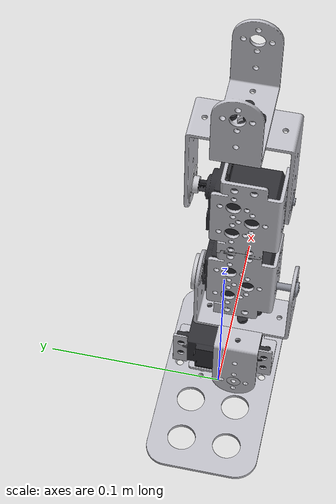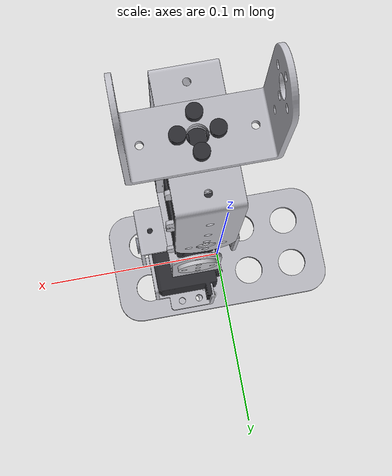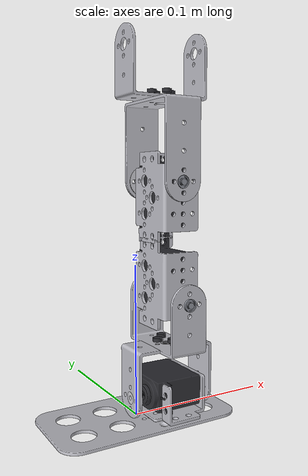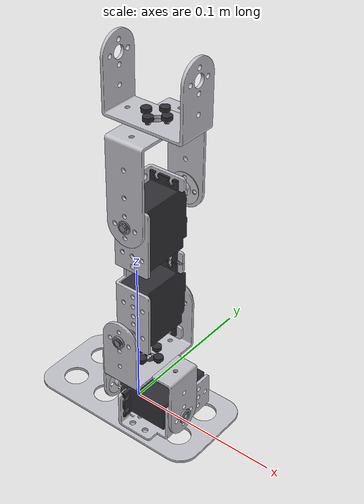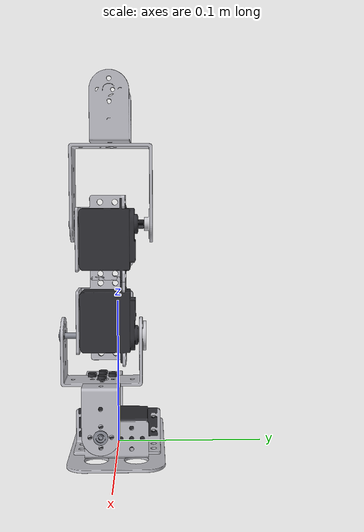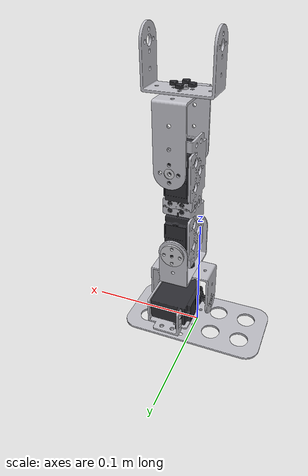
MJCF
<?xml version='1.0' encoding='utf-8'?>
<mujoco model="leg_assembly_right">
  <compiler angle="radian" meshdir=".." autolimits="true"/>
  <visual>
    <global offwidth="1024" offheight="1024"/>
    <headlight ambient="0.55 0.55 0.55" diffuse="0.6 0.6 0.6" specular="0.2 0.2 0.2"/>
  </visual>
  <default>
    <default class="visual"><geom type="mesh" contype="0" conaffinity="0" group="2" density="0"/></default>
    <default class="collision"><geom type="mesh" group="3"/></default>
  </default>
  <asset>
    <mesh name="foot" file="大脚板/脚板支架.STL" scale="0.001 -0.001 0.001"/>
    <mesh name="multi" file="多功能/多功能支架.STL" scale="0.001 -0.001 0.001"/>
    <mesh name="shortU" file="短U/短U支架.STL" scale="0.001 -0.001 0.001"/>
    <mesh name="longU" file="长U/长U支架.STL" scale="0.001 -0.001 0.001"/>
    <mesh name="servo" file="舵机/舵机.STL" scale="0.001 -0.001 0.001"/>
    <mesh name="horn" file="金属舵盘/金属舵盘.STL" scale="0.001 -0.001 0.001"/>
    <mesh name="bearing" file="法兰轴承/法兰轴承.STL" scale="0.001 -0.001 0.001"/>
    <material name="bracket" rgba="0.75 0.75 0.78 1"/>
    <material name="dark" rgba="0.18 0.18 0.20 1"/>
    <material name="horn" rgba="0.80 0.80 0.82 1"/>
    <material name="steel" rgba="0.55 0.56 0.60 1"/>
  </asset>
  <worldbody>
    <body name="foot" pos="0 0 0">
      <geom name="foot_visual" mesh="foot" class="visual" material="bracket" pos="-0.06175 0.03175 -0.001"/>
      <geom name="foot_collision" mesh="foot" class="collision" pos="-0.06175 0.03175 -0.001" density="2700"/>

      <body name="multi" pos="0.022 0 0.0135" quat="0.70710678 0 0 -0.70710678">
        <geom name="multi_visual" mesh="multi" class="visual" material="bracket" pos="-0.029 0.0185 -0.0125"/>
        <geom name="multi_collision" mesh="multi" class="collision" pos="-0.029 0.0185 -0.0125" density="2700"/>
      </body>

      <body name="ankle_servo" pos="0.017000 0.000000 0.016750" quat="0 0.7071068 0 -0.7071068">
        <geom name="servo_visual" mesh="servo" class="visual" material="dark" pos="-0.009752 0.027 -0.0215"/>
        <geom name="servo_collision" mesh="servo" class="collision" pos="-0.009752 0.027 -0.0215" density="1600"/>
      </body>

      <body name="horn" pos="-0.007000 -0.010000 0.016750" quat="0.5 -0.5 0.5 0.5">
        <geom name="horn_visual" mesh="horn" class="visual" material="horn" pos="-0.010 0.0026 -0.010"/>
      </body>

      <body name="little_u" pos="0.017500 -0.010000 0.046750" quat="0.7071068 0 0 -0.7071068">
        <!-- Upper 短U: opening up. -->
        <body name="shortU_up" pos="0 0 0.02225" quat="0.7071068 -0.7071068 0 0">
          <geom name="shortU_up_visual" mesh="shortU" class="visual" material="bracket" pos="-0.027 0.02225 -0.0125"/>
          <geom name="shortU_up_collision" mesh="shortU" class="collision" pos="-0.027 0.02225 -0.0125" density="2700"/>
        </body>

        <!-- Lower 短U: opening down, perpendicular to the upper one. -->
        <body name="shortU_down" pos="0 0 -0.02025" quat="0.5 0.5 -0.5 -0.5">
          <geom name="shortU_down_visual" mesh="shortU" class="visual" material="bracket" pos="-0.027 0.02225 -0.0125"/>
          <geom name="shortU_down_collision" mesh="shortU" class="collision" pos="-0.027 0.02225 -0.0125" density="2700"/>
        </body>

        <!-- M3 screws/nuts through the overlapping base holes (visual only). -->
        <geom name="screw_1" type="cylinder" size="0.0016 0.004" pos="0.007 0 0" quat="0.7071068 -0.7071068 0 0" material="dark" contype="0" conaffinity="0" group="2"/>
        <geom name="screw_2" type="cylinder" size="0.0016 0.004" pos="-0.007 0 0" quat="0.7071068 -0.7071068 0 0" material="dark" contype="0" conaffinity="0" group="2"/>
        <geom name="screw_3" type="cylinder" size="0.0016 0.004" pos="0 -0.007 0" quat="0.7071068 -0.7071068 0 0" material="dark" contype="0" conaffinity="0" group="2"/>
        <geom name="screw_4" type="cylinder" size="0.0016 0.004" pos="0 0.007 0" quat="0.7071068 -0.7071068 0 0" material="dark" contype="0" conaffinity="0" group="2"/>
        <geom name="nut_1" type="cylinder" size="0.003 0.0012" pos="0.007 0 0.0052" material="dark" contype="0" conaffinity="0" group="2"/>
        <geom name="nut_2" type="cylinder" size="0.003 0.0012" pos="-0.007 0 0.0052" material="dark" contype="0" conaffinity="0" group="2"/>
        <geom name="nut_3" type="cylinder" size="0.003 0.0012" pos="0 -0.007 0.0052" material="dark" contype="0" conaffinity="0" group="2"/>
        <geom name="nut_4" type="cylinder" size="0.003 0.0012" pos="0 0.007 0.0052" material="dark" contype="0" conaffinity="0" group="2"/>
      </body>
    </body>
      <body name="multi_0" pos="0.018250 -0.008000 0.143990" quat="0.000000 -0.707107 0.000000 -0.707107">
      <geom name="multi_0_v" mesh="multi" class="visual" material="bracket" pos="-0.029 0.0185 -0.0125"/>
      <geom name="multi_0_c" mesh="multi" class="collision" pos="-0.029 0.0185 -0.0125" density="2700"/>
    </body>
    <body name="servo_1" pos="0.017500 -0.003000 0.143990" quat="0.000000 0.000000 -0.707107 -0.707107">
      <geom name="servo_1_v" mesh="servo" class="visual" material="dark" pos="-0.009752 0.027 -0.0215"/>
      <geom name="servo_1_c" mesh="servo" class="collision" pos="-0.009752 0.027 -0.0215" density="2700"/>
    </body>
    <body name="horn_2" pos="0.017500 0.021000 0.153990" quat="0.000000 0.000000 1.000000 0.000000">
      <geom name="horn_2_v" mesh="horn" class="visual" material="horn" pos="-0.01 0.0026 -0.01"/>
      <geom name="horn_2_c" mesh="horn" class="collision" pos="-0.01 0.0026 -0.01" density="2700"/>
    </body>
    <body name="little_u_top" pos="0.017500 -0.003000 0.206210" quat="0.7071068 0 0 -0.7071068">
      <body name="longU_top" pos="0 0 -0.03225" quat="-0.7071068 -0.7071068 0 0">
        <geom name="longU_top_visual" mesh="longU" class="visual" material="bracket" pos="-0.027 0.03225 -0.0125"/>
        <geom name="longU_top_collision" mesh="longU" class="collision" pos="-0.027 0.03225 -0.0125" density="2700"/>
      </body>
      <body name="shortU_top" pos="0 0 0.02225" quat="0.5 -0.5 -0.5 0.5">
        <geom name="shortU_top_visual" mesh="shortU" class="visual" material="bracket" pos="-0.027 0.02225 -0.0125"/>
        <geom name="shortU_top_collision" mesh="shortU" class="collision" pos="-0.027 0.02225 -0.0125" density="2700"/>
      </body>
      <geom name="top_screw_1" type="cylinder" size="0.0016 0.004" pos="0.007 0 0" quat="0.7071068 -0.7071068 0 0" material="dark" contype="0" conaffinity="0" group="2"/>
      <geom name="top_screw_2" type="cylinder" size="0.0016 0.004" pos="-0.007 0 0" quat="0.7071068 -0.7071068 0 0" material="dark" contype="0" conaffinity="0" group="2"/>
      <geom name="top_screw_3" type="cylinder" size="0.0016 0.004" pos="0 -0.007 0" quat="0.7071068 -0.7071068 0 0" material="dark" contype="0" conaffinity="0" group="2"/>
      <geom name="top_screw_4" type="cylinder" size="0.0016 0.004" pos="0 0.007 0" quat="0.7071068 -0.7071068 0 0" material="dark" contype="0" conaffinity="0" group="2"/>
      <geom name="top_nut_1" type="cylinder" size="0.003 0.0012" pos="0.007 0 0.0052" material="dark" contype="0" conaffinity="0" group="2"/>
      <geom name="top_nut_2" type="cylinder" size="0.003 0.0012" pos="-0.007 0 0.0052" material="dark" contype="0" conaffinity="0" group="2"/>
      <geom name="top_nut_3" type="cylinder" size="0.003 0.0012" pos="0 -0.007 0.0052" material="dark" contype="0" conaffinity="0" group="2"/>
      <geom name="top_nut_4" type="cylinder" size="0.003 0.0012" pos="0 0.007 0.0052" material="dark" contype="0" conaffinity="0" group="2"/>
    </body>
    <body name="multi_3" pos="0.018250 -0.008000 0.088990" quat="0.000000 -0.707107 0.000000 -0.707107">
      <geom name="multi_3_v" mesh="multi" class="visual" material="bracket" pos="-0.029 0.0185 -0.0125"/>
      <geom name="multi_3_c" mesh="multi" class="collision" pos="-0.029 0.0185 -0.0125" density="2700"/>
    </body>
    <body name="servo_4" pos="0.017500 -0.003000 0.088990" quat="0.7071068 -0.7071068 0 0">
      <geom name="servo_4_v" mesh="servo" class="visual" material="dark" pos="-0.009752 0.027 -0.0215"/>
      <geom name="servo_4_c" mesh="servo" class="collision" pos="-0.009752 0.027 -0.0215" density="2700"/>
    </body>
    <body name="horn_5" pos="0.017500 0.017000 0.078750" quat="0.000000 0.000000 1.000000 0.000000">
      <geom name="horn_5_v" mesh="horn" class="visual" material="horn" pos="-0.01 0.0026 -0.01"/>
      <geom name="horn_5_c" mesh="horn" class="collision" pos="-0.01 0.0026 -0.01" density="2700"/>
    </body>
    <!-- Hip pivot on the non-driven (+Y) side: shaft from the servo case into a flange
         bearing in the 长U prong hole, so the hip is supported on both sides. -->
    <body name="hip_pivot_shaft" pos="0.017000 -0.026500 0.153940">
      <geom name="hip_pivot_shaft_g" type="cylinder" size="0.002 0.005000" quat="0.7071068 -0.7071068 0 0" material="steel" contype="0" conaffinity="0" group="2"/>
    </body>
    <body name="hip_pivot_bearing" pos="0.017000 -0.029000 0.153940">
      <geom name="hip_pivot_bearing_g" type="mesh" mesh="bearing" class="visual" material="steel" pos="-0.004750 0.001500 -0.004750"/>
    </body>
    <!-- Knee pivot on the non-driven (+Y) side: shaft from the servo case into a
         flange bearing in the little-U wall hole, so the joint is supported both sides. -->
    <body name="knee_pivot_shaft" pos="0.017500 -0.030000 0.078750">
      <geom name="knee_pivot_shaft_g" type="cylinder" size="0.002 0.009000" quat="0.7071068 -0.7071068 0 0" material="steel" contype="0" conaffinity="0" group="2"/>
    </body>
    <body name="knee_pivot_bearing" pos="0.017500 -0.037000 0.078750">
      <geom name="knee_pivot_bearing_g" type="mesh" mesh="bearing" class="visual" material="steel" pos="-0.004750 0.001500 -0.004750"/>
    </body>
    <!-- Ankle pivot on the non-driven (+X) side: shaft from the servo case into a
         flange bearing in the little-U wall hole, so the joint is supported both sides. -->
    <body name="ankle_pivot_shaft" pos="0.041500 -0.010000 0.016750">
      <geom name="ankle_pivot_shaft_g" type="cylinder" size="0.002 0.003000" quat="0.7071068 0 0.7071068 0" material="steel" contype="0" conaffinity="0" group="2"/>
    </body>
    <body name="ankle_pivot_bearing" pos="0.044500 -0.010000 0.016750" quat="0.7071068 0 0 -0.7071068">
      <geom name="ankle_pivot_bearing_g" type="mesh" mesh="bearing" class="visual" material="steel" pos="-0.004750 0.001500 -0.004750"/>
    </body>
  </worldbody>
</mujoco>
